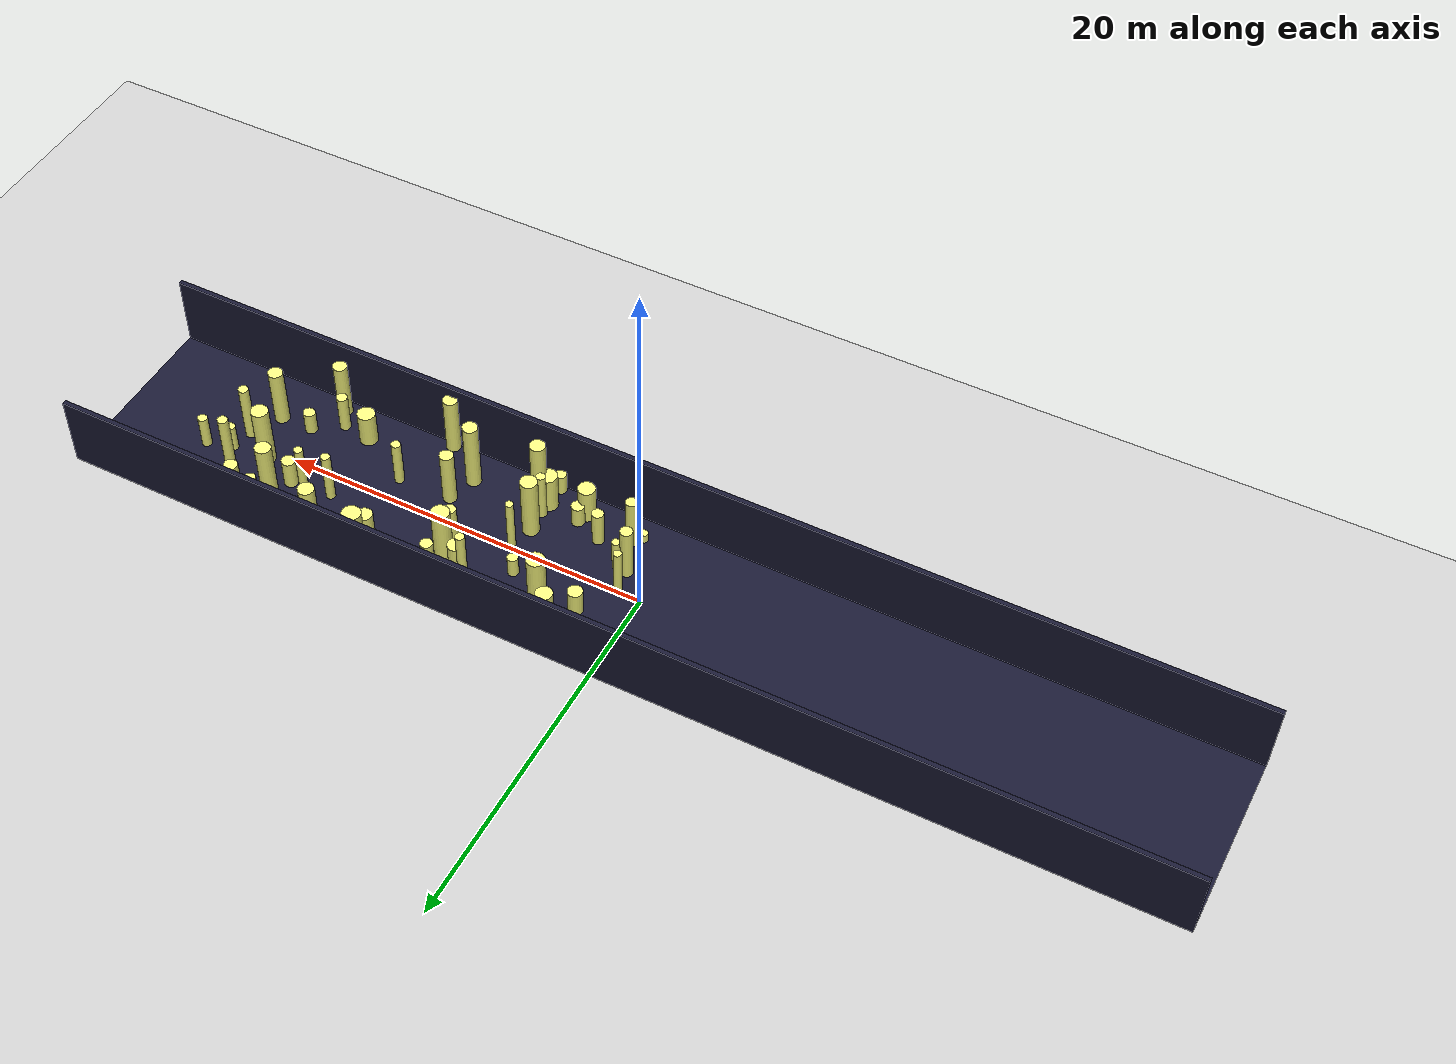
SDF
<sdf version="1.4">
 <world name="default">
  <include><uri>model://ground_plane</uri></include>
  <include><uri>model://sun</uri></include>
  <model name="forest">
   <static>true</static>
   <link name="cylinder0">
    <pose>17.474350058050383 -3.0349304535474007 0.9654857216544241 0 0 0</pose>
    <visual name="visual">
     <geometry>
      <cylinder><radius>0.479023355841757</radius><length>1.9309714433088483</length></cylinder>
     </geometry>
     <material>
      <ambient>0.6 0.6 0.6 1</ambient>
      <diffuse>1 1 0.5 1</diffuse>
      <specular>0 0 0</specular>
      <emissive>0 0 0 1</emissive>
     </material>
    </visual>
    <collision name="collision">
     <geometry>
      <cylinder><radius>0.479023355841757</radius><length>1.9309714433088483</length></cylinder>
     </geometry>
     <max_contacts>0</max_contacts>
    </collision>
   </link>
   <link name="cylinder1">
    <pose>4.981119732722934 -3.7257389631529083 1.0225231877695053 0 0 0</pose>
    <visual name="visual">
     <geometry>
      <cylinder><radius>0.4604490138018022</radius><length>2.0450463755390107</length></cylinder>
     </geometry>
     <material>
      <ambient>0.6 0.6 0.6 1</ambient>
      <diffuse>1 1 0.5 1</diffuse>
      <specular>0 0 0</specular>
      <emissive>0 0 0 1</emissive>
     </material>
    </visual>
    <collision name="collision">
     <geometry>
      <cylinder><radius>0.4604490138018022</radius><length>2.0450463755390107</length></cylinder>
     </geometry>
     <max_contacts>0</max_contacts>
    </collision>
   </link>
   <link name="cylinder4">
    <pose>22.26100889590525 -2.1995081622203716 1.6780744197933548 0 0 0</pose>
    <visual name="visual">
     <geometry>
      <cylinder><radius>0.3907151714520144</radius><length>3.3561488395867096</length></cylinder>
     </geometry>
     <material>
      <ambient>0.6 0.6 0.6 1</ambient>
      <diffuse>1 1 0.5 1</diffuse>
      <specular>0 0 0</specular>
      <emissive>0 0 0 1</emissive>
     </material>
    </visual>
    <collision name="collision">
     <geometry>
      <cylinder><radius>0.3907151714520144</radius><length>3.3561488395867096</length></cylinder>
     </geometry>
     <max_contacts>0</max_contacts>
    </collision>
   </link>
   <link name="cylinder5">
    <pose>13.33595052830114 -4.642942753143084 1.7284169206716375 0 0 0</pose>
    <visual name="visual">
     <geometry>
      <cylinder><radius>0.3890159434390348</radius><length>3.456833841343275</length></cylinder>
     </geometry>
     <material>
      <ambient>0.6 0.6 0.6 1</ambient>
      <diffuse>1 1 0.5 1</diffuse>
      <specular>0 0 0</specular>
      <emissive>0 0 0 1</emissive>
     </material>
    </visual>
    <collision name="collision">
     <geometry>
      <cylinder><radius>0.3890159434390348</radius><length>3.456833841343275</length></cylinder>
     </geometry>
     <max_contacts>0</max_contacts>
    </collision>
   </link>
   <link name="cylinder6">
    <pose>2.083699437350038 -1.4215035044701274 0.9485511643365495 0 0 0</pose>
    <visual name="visual">
     <geometry>
      <cylinder><radius>0.21684499694005663</radius><length>1.897102328673099</length></cylinder>
     </geometry>
     <material>
      <ambient>0.6 0.6 0.6 1</ambient>
      <diffuse>1 1 0.5 1</diffuse>
      <specular>0 0 0</specular>
      <emissive>0 0 0 1</emissive>
     </material>
    </visual>
    <collision name="collision">
     <geometry>
      <cylinder><radius>0.21684499694005663</radius><length>1.897102328673099</length></cylinder>
     </geometry>
     <max_contacts>0</max_contacts>
    </collision>
   </link>
   <link name="cylinder7">
    <pose>9.601256511389927 2.424961302580276 1.960368952381102 0 0 0</pose>
    <visual name="visual">
     <geometry>
      <cylinder><radius>0.4792568903990782</radius><length>3.920737904762204</length></cylinder>
     </geometry>
     <material>
      <ambient>0.6 0.6 0.6 1</ambient>
      <diffuse>1 1 0.5 1</diffuse>
      <specular>0 0 0</specular>
      <emissive>0 0 0 1</emissive>
     </material>
    </visual>
    <collision name="collision">
     <geometry>
      <cylinder><radius>0.4792568903990782</radius><length>3.920737904762204</length></cylinder>
     </geometry>
     <max_contacts>0</max_contacts>
    </collision>
   </link>
   <link name="cylinder8">
    <pose>9.742094447221689 3.6039482852947167 1.38029477843272 0 0 0</pose>
    <visual name="visual">
     <geometry>
      <cylinder><radius>0.32385085328464713</radius><length>2.76058955686544</length></cylinder>
     </geometry>
     <material>
      <ambient>0.6 0.6 0.6 1</ambient>
      <diffuse>1 1 0.5 1</diffuse>
      <specular>0 0 0</specular>
      <emissive>0 0 0 1</emissive>
     </material>
    </visual>
    <collision name="collision">
     <geometry>
      <cylinder><radius>0.32385085328464713</radius><length>2.76058955686544</length></cylinder>
     </geometry>
     <max_contacts>0</max_contacts>
    </collision>
   </link>
   <link name="cylinder10">
    <pose>6.990896955859142 -1.551141580334158 1.794815221802227 0 0 0</pose>
    <visual name="visual">
     <geometry>
      <cylinder><radius>0.44472197589610934</radius><length>3.589630443604454</length></cylinder>
     </geometry>
     <material>
      <ambient>0.6 0.6 0.6 1</ambient>
      <diffuse>1 1 0.5 1</diffuse>
      <specular>0 0 0</specular>
      <emissive>0 0 0 1</emissive>
     </material>
    </visual>
    <collision name="collision">
     <geometry>
      <cylinder><radius>0.44472197589610934</radius><length>3.589630443604454</length></cylinder>
     </geometry>
     <max_contacts>0</max_contacts>
    </collision>
   </link>
   <link name="cylinder15">
    <pose>13.340676952182172 3.4753915415929235 1.4218001322765699 0 0 0</pose>
    <visual name="visual">
     <geometry>
      <cylinder><radius>0.4169326418490212</radius><length>2.8436002645531397</length></cylinder>
     </geometry>
     <material>
      <ambient>0.6 0.6 0.6 1</ambient>
      <diffuse>1 1 0.5 1</diffuse>
      <specular>0 0 0</specular>
      <emissive>0 0 0 1</emissive>
     </material>
    </visual>
    <collision name="collision">
     <geometry>
      <cylinder><radius>0.4169326418490212</radius><length>2.8436002645531397</length></cylinder>
     </geometry>
     <max_contacts>0</max_contacts>
    </collision>
   </link>
   <link name="cylinder20">
    <pose>19.034700898979835 -3.231470783861803 1.0958777769155494 0 0 0</pose>
    <visual name="visual">
     <geometry>
      <cylinder><radius>0.2891964671625721</radius><length>2.191755553831099</length></cylinder>
     </geometry>
     <material>
      <ambient>0.6 0.6 0.6 1</ambient>
      <diffuse>1 1 0.5 1</diffuse>
      <specular>0 0 0</specular>
      <emissive>0 0 0 1</emissive>
     </material>
    </visual>
    <collision name="collision">
     <geometry>
      <cylinder><radius>0.2891964671625721</radius><length>2.191755553831099</length></cylinder>
     </geometry>
     <max_contacts>0</max_contacts>
    </collision>
   </link>
   <link name="cylinder21">
    <pose>19.74069789002226 2.639889300821311 1.7884892320661283 0 0 0</pose>
    <visual name="visual">
     <geometry>
      <cylinder><radius>0.4281758525312108</radius><length>3.5769784641322566</length></cylinder>
     </geometry>
     <material>
      <ambient>0.6 0.6 0.6 1</ambient>
      <diffuse>1 1 0.5 1</diffuse>
      <specular>0 0 0</specular>
      <emissive>0 0 0 1</emissive>
     </material>
    </visual>
    <collision name="collision">
     <geometry>
      <cylinder><radius>0.4281758525312108</radius><length>3.5769784641322566</length></cylinder>
     </geometry>
     <max_contacts>0</max_contacts>
    </collision>
   </link>
   <link name="cylinder22">
    <pose>10.028819131293751 0.9667783642480341 1.242532234555234 0 0 0</pose>
    <visual name="visual">
     <geometry>
      <cylinder><radius>0.3125013418587146</radius><length>2.485064469110468</length></cylinder>
     </geometry>
     <material>
      <ambient>0.6 0.6 0.6 1</ambient>
      <diffuse>1 1 0.5 1</diffuse>
      <specular>0 0 0</specular>
      <emissive>0 0 0 1</emissive>
     </material>
    </visual>
    <collision name="collision">
     <geometry>
      <cylinder><radius>0.3125013418587146</radius><length>2.485064469110468</length></cylinder>
     </geometry>
     <max_contacts>0</max_contacts>
    </collision>
   </link>
   <link name="cylinder24">
    <pose>21.432369416347754 3.2905600152771974 1.0591906268662163 0 0 0</pose>
    <visual name="visual">
     <geometry>
      <cylinder><radius>0.36264364448251285</radius><length>2.1183812537324327</length></cylinder>
     </geometry>
     <material>
      <ambient>0.6 0.6 0.6 1</ambient>
      <diffuse>1 1 0.5 1</diffuse>
      <specular>0 0 0</specular>
      <emissive>0 0 0 1</emissive>
     </material>
    </visual>
    <collision name="collision">
     <geometry>
      <cylinder><radius>0.36264364448251285</radius><length>2.1183812537324327</length></cylinder>
     </geometry>
     <max_contacts>0</max_contacts>
    </collision>
   </link>
   <link name="cylinder27">
    <pose>5.173194019723276 -3.116572948917123 0.6256688202765066 0 0 0</pose>
    <visual name="visual">
     <geometry>
      <cylinder><radius>0.34411350651951184</radius><length>1.2513376405530132</length></cylinder>
     </geometry>
     <material>
      <ambient>0.6 0.6 0.6 1</ambient>
      <diffuse>1 1 0.5 1</diffuse>
      <specular>0 0 0</specular>
      <emissive>0 0 0 1</emissive>
     </material>
    </visual>
    <collision name="collision">
     <geometry>
      <cylinder><radius>0.34411350651951184</radius><length>1.2513376405530132</length></cylinder>
     </geometry>
     <max_contacts>0</max_contacts>
    </collision>
   </link>
   <link name="cylinder30">
    <pose>16.150703960999316 4.161689183484395 1.9443778139249177 0 0 0</pose>
    <visual name="visual">
     <geometry>
      <cylinder><radius>0.4260707346098702</radius><length>3.8887556278498354</length></cylinder>
     </geometry>
     <material>
      <ambient>0.6 0.6 0.6 1</ambient>
      <diffuse>1 1 0.5 1</diffuse>
      <specular>0 0 0</specular>
      <emissive>0 0 0 1</emissive>
     </material>
    </visual>
    <collision name="collision">
     <geometry>
      <cylinder><radius>0.4260707346098702</radius><length>3.8887556278498354</length></cylinder>
     </geometry>
     <max_contacts>0</max_contacts>
    </collision>
   </link>
   <link name="cylinder31">
    <pose>20.468062265337892 -2.2148263954350336 0.6623111697631872 0 0 0</pose>
    <visual name="visual">
     <geometry>
      <cylinder><radius>0.3240726301415455</radius><length>1.3246223395263743</length></cylinder>
     </geometry>
     <material>
      <ambient>0.6 0.6 0.6 1</ambient>
      <diffuse>1 1 0.5 1</diffuse>
      <specular>0 0 0</specular>
      <emissive>0 0 0 1</emissive>
     </material>
    </visual>
    <collision name="collision">
     <geometry>
      <cylinder><radius>0.3240726301415455</radius><length>1.3246223395263743</length></cylinder>
     </geometry>
     <max_contacts>0</max_contacts>
    </collision>
   </link>
   <link name="cylinder32">
    <pose>1.680699917737826 -3.6193126956154478 0.29244209586093084 0 0 0</pose>
    <visual name="visual">
     <geometry>
      <cylinder><radius>0.2092950892574559</radius><length>0.5848841917218617</length></cylinder>
     </geometry>
     <material>
      <ambient>0.6 0.6 0.6 1</ambient>
      <diffuse>1 1 0.5 1</diffuse>
      <specular>0 0 0</specular>
      <emissive>0 0 0 1</emissive>
     </material>
    </visual>
    <collision name="collision">
     <geometry>
      <cylinder><radius>0.2092950892574559</radius><length>0.5848841917218617</length></cylinder>
     </geometry>
     <max_contacts>0</max_contacts>
    </collision>
   </link>
   <link name="cylinder33">
    <pose>9.863504967454482 0.808594310656428 0.3964918212273452 0 0 0</pose>
    <visual name="visual">
     <geometry>
      <cylinder><radius>0.2902772387612938</radius><length>0.7929836424546904</length></cylinder>
     </geometry>
     <material>
      <ambient>0.6 0.6 0.6 1</ambient>
      <diffuse>1 1 0.5 1</diffuse>
      <specular>0 0 0</specular>
      <emissive>0 0 0 1</emissive>
     </material>
    </visual>
    <collision name="collision">
     <geometry>
      <cylinder><radius>0.2902772387612938</radius><length>0.7929836424546904</length></cylinder>
     </geometry>
     <max_contacts>0</max_contacts>
    </collision>
   </link>
   <link name="cylinder36">
    <pose>7.3627164502554265 -0.2668266840622504 1.5181494502579536 0 0 0</pose>
    <visual name="visual">
     <geometry>
      <cylinder><radius>0.2097716151069922</radius><length>3.036298900515907</length></cylinder>
     </geometry>
     <material>
      <ambient>0.6 0.6 0.6 1</ambient>
      <diffuse>1 1 0.5 1</diffuse>
      <specular>0 0 0</specular>
      <emissive>0 0 0 1</emissive>
     </material>
    </visual>
    <collision name="collision">
     <geometry>
      <cylinder><radius>0.2097716151069922</radius><length>3.036298900515907</length></cylinder>
     </geometry>
     <max_contacts>0</max_contacts>
    </collision>
   </link>
   <link name="cylinder38">
    <pose>23.05829503605309 -0.4798861230173177 1.6580908223486408 0 0 0</pose>
    <visual name="visual">
     <geometry>
      <cylinder><radius>0.2744843459543446</radius><length>3.3161816446972816</length></cylinder>
     </geometry>
     <material>
      <ambient>0.6 0.6 0.6 1</ambient>
      <diffuse>1 1 0.5 1</diffuse>
      <specular>0 0 0</specular>
      <emissive>0 0 0 1</emissive>
     </material>
    </visual>
    <collision name="collision">
     <geometry>
      <cylinder><radius>0.2744843459543446</radius><length>3.3161816446972816</length></cylinder>
     </geometry>
     <max_contacts>0</max_contacts>
    </collision>
   </link>
   <link name="cylinder40">
    <pose>1.3012875947699953 -0.13856883436392842 1.3926023500930211 0 0 0</pose>
    <visual name="visual">
     <geometry>
      <cylinder><radius>0.2205407637531081</radius><length>2.7852047001860423</length></cylinder>
     </geometry>
     <material>
      <ambient>0.6 0.6 0.6 1</ambient>
      <diffuse>1 1 0.5 1</diffuse>
      <specular>0 0 0</specular>
      <emissive>0 0 0 1</emissive>
     </material>
    </visual>
    <collision name="collision">
     <geometry>
      <cylinder><radius>0.2205407637531081</radius><length>2.7852047001860423</length></cylinder>
     </geometry>
     <max_contacts>0</max_contacts>
    </collision>
   </link>
   <link name="cylinder41">
    <pose>7.368683766399791 -2.2983883685452575 0.9258939166206205 0 0 0</pose>
    <visual name="visual">
     <geometry>
      <cylinder><radius>0.34303641036955945</radius><length>1.851787833241241</length></cylinder>
     </geometry>
     <material>
      <ambient>0.6 0.6 0.6 1</ambient>
      <diffuse>1 1 0.5 1</diffuse>
      <specular>0 0 0</specular>
      <emissive>0 0 0 1</emissive>
     </material>
    </visual>
    <collision name="collision">
     <geometry>
      <cylinder><radius>0.34303641036955945</radius><length>1.851787833241241</length></cylinder>
     </geometry>
     <max_contacts>0</max_contacts>
    </collision>
   </link>
   <link name="cylinder46">
    <pose>11.668276562263593 -1.489181927137647 1.595949690401096 0 0 0</pose>
    <visual name="visual">
     <geometry>
      <cylinder><radius>0.36794035113910684</radius><length>3.191899380802192</length></cylinder>
     </geometry>
     <material>
      <ambient>0.6 0.6 0.6 1</ambient>
      <diffuse>1 1 0.5 1</diffuse>
      <specular>0 0 0</specular>
      <emissive>0 0 0 1</emissive>
     </material>
    </visual>
    <collision name="collision">
     <geometry>
      <cylinder><radius>0.36794035113910684</radius><length>3.191899380802192</length></cylinder>
     </geometry>
     <max_contacts>0</max_contacts>
    </collision>
   </link>
   <link name="cylinder47">
    <pose>11.20340025141465 -3.0679908835565084 1.9767067778364764 0 0 0</pose>
    <visual name="visual">
     <geometry>
      <cylinder><radius>0.3995136676813486</radius><length>3.953413555672953</length></cylinder>
     </geometry>
     <material>
      <ambient>0.6 0.6 0.6 1</ambient>
      <diffuse>1 1 0.5 1</diffuse>
      <specular>0 0 0</specular>
      <emissive>0 0 0 1</emissive>
     </material>
    </visual>
    <collision name="collision">
     <geometry>
      <cylinder><radius>0.3995136676813486</radius><length>3.953413555672953</length></cylinder>
     </geometry>
     <max_contacts>0</max_contacts>
    </collision>
   </link>
   <link name="cylinder48">
    <pose>1.6647512046453308 4.063980111714518 0.4371183833766389 0 0 0</pose>
    <visual name="visual">
     <geometry>
      <cylinder><radius>0.4283587279921878</radius><length>0.8742367667532778</length></cylinder>
     </geometry>
     <material>
      <ambient>0.6 0.6 0.6 1</ambient>
      <diffuse>1 1 0.5 1</diffuse>
      <specular>0 0 0</specular>
      <emissive>0 0 0 1</emissive>
     </material>
    </visual>
    <collision name="collision">
     <geometry>
      <cylinder><radius>0.4283587279921878</radius><length>0.8742367667532778</length></cylinder>
     </geometry>
     <max_contacts>0</max_contacts>
    </collision>
   </link>
   <link name="cylinder50">
    <pose>2.667249374632725 4.529174650250976 1.9906787980647265 0 0 0</pose>
    <visual name="visual">
     <geometry>
      <cylinder><radius>0.4340732099337412</radius><length>3.981357596129453</length></cylinder>
     </geometry>
     <material>
      <ambient>0.6 0.6 0.6 1</ambient>
      <diffuse>1 1 0.5 1</diffuse>
      <specular>0 0 0</specular>
      <emissive>0 0 0 1</emissive>
     </material>
    </visual>
    <collision name="collision">
     <geometry>
      <cylinder><radius>0.4340732099337412</radius><length>3.981357596129453</length></cylinder>
     </geometry>
     <max_contacts>0</max_contacts>
    </collision>
   </link>
   <link name="cylinder53">
    <pose>18.1401531018184 1.8894457020072286 1.7576686166153417 0 0 0</pose>
    <visual name="visual">
     <geometry>
      <cylinder><radius>0.22812469044872064</radius><length>3.5153372332306834</length></cylinder>
     </geometry>
     <material>
      <ambient>0.6 0.6 0.6 1</ambient>
      <diffuse>1 1 0.5 1</diffuse>
      <specular>0 0 0</specular>
      <emissive>0 0 0 1</emissive>
     </material>
    </visual>
    <collision name="collision">
     <geometry>
      <cylinder><radius>0.22812469044872064</radius><length>3.5153372332306834</length></cylinder>
     </geometry>
     <max_contacts>0</max_contacts>
    </collision>
   </link>
   <link name="cylinder54">
    <pose>14.572585931318628 -1.3522918783037055 1.3345853702635546 0 0 0</pose>
    <visual name="visual">
     <geometry>
      <cylinder><radius>0.25575965259684974</radius><length>2.6691707405271092</length></cylinder>
     </geometry>
     <material>
      <ambient>0.6 0.6 0.6 1</ambient>
      <diffuse>1 1 0.5 1</diffuse>
      <specular>0 0 0</specular>
      <emissive>0 0 0 1</emissive>
     </material>
    </visual>
    <collision name="collision">
     <geometry>
      <cylinder><radius>0.25575965259684974</radius><length>2.6691707405271092</length></cylinder>
     </geometry>
     <max_contacts>0</max_contacts>
    </collision>
   </link>
   <link name="cylinder55">
    <pose>3.698094316217322 -2.5134255271013553 1.0294614972973575 0 0 0</pose>
    <visual name="visual">
     <geometry>
      <cylinder><radius>0.3095883364873114</radius><length>2.058922994594715</length></cylinder>
     </geometry>
     <material>
      <ambient>0.6 0.6 0.6 1</ambient>
      <diffuse>1 1 0.5 1</diffuse>
      <specular>0 0 0</specular>
      <emissive>0 0 0 1</emissive>
     </material>
    </visual>
    <collision name="collision">
     <geometry>
      <cylinder><radius>0.3095883364873114</radius><length>2.058922994594715</length></cylinder>
     </geometry>
     <max_contacts>0</max_contacts>
    </collision>
   </link>
   <link name="cylinder59">
    <pose>7.926408092503692 3.374078958173211 1.9993845946720725 0 0 0</pose>
    <visual name="visual">
     <geometry>
      <cylinder><radius>0.2407179981084987</radius><length>3.998769189344145</length></cylinder>
     </geometry>
     <material>
      <ambient>0.6 0.6 0.6 1</ambient>
      <diffuse>1 1 0.5 1</diffuse>
      <specular>0 0 0</specular>
      <emissive>0 0 0 1</emissive>
     </material>
    </visual>
    <collision name="collision">
     <geometry>
      <cylinder><radius>0.2407179981084987</radius><length>3.998769189344145</length></cylinder>
     </geometry>
     <max_contacts>0</max_contacts>
    </collision>
   </link>
   <link name="cylinder63">
    <pose>24.688753817838474 1.1210332307911584 0.9537501482060452 0 0 0</pose>
    <visual name="visual">
     <geometry>
      <cylinder><radius>0.2576225765747192</radius><length>1.9075002964120904</length></cylinder>
     </geometry>
     <material>
      <ambient>0.6 0.6 0.6 1</ambient>
      <diffuse>1 1 0.5 1</diffuse>
      <specular>0 0 0</specular>
      <emissive>0 0 0 1</emissive>
     </material>
    </visual>
    <collision name="collision">
     <geometry>
      <cylinder><radius>0.2576225765747192</radius><length>1.9075002964120904</length></cylinder>
     </geometry>
     <max_contacts>0</max_contacts>
    </collision>
   </link>
   <link name="cylinder64">
    <pose>17.06424668885191 1.2110055904409283 1.4643404374544946 0 0 0</pose>
    <visual name="visual">
     <geometry>
      <cylinder><radius>0.24640808958183616</radius><length>2.928680874908989</length></cylinder>
     </geometry>
     <material>
      <ambient>0.6 0.6 0.6 1</ambient>
      <diffuse>1 1 0.5 1</diffuse>
      <specular>0 0 0</specular>
      <emissive>0 0 0 1</emissive>
     </material>
    </visual>
    <collision name="collision">
     <geometry>
      <cylinder><radius>0.24640808958183616</radius><length>2.928680874908989</length></cylinder>
     </geometry>
     <max_contacts>0</max_contacts>
    </collision>
   </link>
   <link name="cylinder68">
    <pose>23.323323432167506 0.7176590704898222 0.7920284478663597 0 0 0</pose>
    <visual name="visual">
     <geometry>
      <cylinder><radius>0.26099747706640636</radius><length>1.5840568957327195</length></cylinder>
     </geometry>
     <material>
      <ambient>0.6 0.6 0.6 1</ambient>
      <diffuse>1 1 0.5 1</diffuse>
      <specular>0 0 0</specular>
      <emissive>0 0 0 1</emissive>
     </material>
    </visual>
    <collision name="collision">
     <geometry>
      <cylinder><radius>0.26099747706640636</radius><length>1.5840568957327195</length></cylinder>
     </geometry>
     <max_contacts>0</max_contacts>
    </collision>
   </link>
   <link name="cylinder69">
    <pose>22.44977717178501 2.128671475122971 1.8876093849118023 0 0 0</pose>
    <visual name="visual">
     <geometry>
      <cylinder><radius>0.2750755018710056</radius><length>3.7752187698236046</length></cylinder>
     </geometry>
     <material>
      <ambient>0.6 0.6 0.6 1</ambient>
      <diffuse>1 1 0.5 1</diffuse>
      <specular>0 0 0</specular>
      <emissive>0 0 0 1</emissive>
     </material>
    </visual>
    <collision name="collision">
     <geometry>
      <cylinder><radius>0.2750755018710056</radius><length>3.7752187698236046</length></cylinder>
     </geometry>
     <max_contacts>0</max_contacts>
    </collision>
   </link>
   <link name="cylinder71">
    <pose>19.638999198153158 -4.185302012283316 1.6597904628092361 0 0 0</pose>
    <visual name="visual">
     <geometry>
      <cylinder><radius>0.37783208743530544</radius><length>3.3195809256184723</length></cylinder>
     </geometry>
     <material>
      <ambient>0.6 0.6 0.6 1</ambient>
      <diffuse>1 1 0.5 1</diffuse>
      <specular>0 0 0</specular>
      <emissive>0 0 0 1</emissive>
     </material>
    </visual>
    <collision name="collision">
     <geometry>
      <cylinder><radius>0.37783208743530544</radius><length>3.3195809256184723</length></cylinder>
     </geometry>
     <max_contacts>0</max_contacts>
    </collision>
   </link>
   <link name="cylinder74">
    <pose>2.509107483344568 1.928400536642676 0.7340046627735433 0 0 0</pose>
    <visual name="visual">
     <geometry>
      <cylinder><radius>0.3869482908814679</radius><length>1.4680093255470865</length></cylinder>
     </geometry>
     <material>
      <ambient>0.6 0.6 0.6 1</ambient>
      <diffuse>1 1 0.5 1</diffuse>
      <specular>0 0 0</specular>
      <emissive>0 0 0 1</emissive>
     </material>
    </visual>
    <collision name="collision">
     <geometry>
      <cylinder><radius>0.3869482908814679</radius><length>1.4680093255470865</length></cylinder>
     </geometry>
     <max_contacts>0</max_contacts>
    </collision>
   </link>
   <link name="cylinder77">
    <pose>19.33229031511035 1.3733495475842368 0.8252401866188253 0 0 0</pose>
    <visual name="visual">
     <geometry>
      <cylinder><radius>0.36996120135239224</radius><length>1.6504803732376505</length></cylinder>
     </geometry>
     <material>
      <ambient>0.6 0.6 0.6 1</ambient>
      <diffuse>1 1 0.5 1</diffuse>
      <specular>0 0 0</specular>
      <emissive>0 0 0 1</emissive>
     </material>
    </visual>
    <collision name="collision">
     <geometry>
      <cylinder><radius>0.36996120135239224</radius><length>1.6504803732376505</length></cylinder>
     </geometry>
     <max_contacts>0</max_contacts>
    </collision>
   </link>
   <link name="cylinder78">
    <pose>4.668917137390583 1.9124171253359474 1.3071265258688365 0 0 0</pose>
    <visual name="visual">
     <geometry>
      <cylinder><radius>0.48112252076557305</radius><length>2.614253051737673</length></cylinder>
     </geometry>
     <material>
      <ambient>0.6 0.6 0.6 1</ambient>
      <diffuse>1 1 0.5 1</diffuse>
      <specular>0 0 0</specular>
      <emissive>0 0 0 1</emissive>
     </material>
    </visual>
    <collision name="collision">
     <geometry>
      <cylinder><radius>0.48112252076557305</radius><length>2.614253051737673</length></cylinder>
     </geometry>
     <max_contacts>0</max_contacts>
    </collision>
   </link>
   <link name="cylinder80">
    <pose>2.170604650428352 -3.1974689258184763 1.5086333913672216 0 0 0</pose>
    <visual name="visual">
     <geometry>
      <cylinder><radius>0.31099082396441746</radius><length>3.0172667827344433</length></cylinder>
     </geometry>
     <material>
      <ambient>0.6 0.6 0.6 1</ambient>
      <diffuse>1 1 0.5 1</diffuse>
      <specular>0 0 0</specular>
      <emissive>0 0 0 1</emissive>
     </material>
    </visual>
    <collision name="collision">
     <geometry>
      <cylinder><radius>0.31099082396441746</radius><length>3.0172667827344433</length></cylinder>
     </geometry>
     <max_contacts>0</max_contacts>
    </collision>
   </link>
   <link name="cylinder82">
    <pose>6.37871469579348 1.2766453235188049 0.5902662712890283 0 0 0</pose>
    <visual name="visual">
     <geometry>
      <cylinder><radius>0.28617767153222506</radius><length>1.1805325425780566</length></cylinder>
     </geometry>
     <material>
      <ambient>0.6 0.6 0.6 1</ambient>
      <diffuse>1 1 0.5 1</diffuse>
      <specular>0 0 0</specular>
      <emissive>0 0 0 1</emissive>
     </material>
    </visual>
    <collision name="collision">
     <geometry>
      <cylinder><radius>0.28617767153222506</radius><length>1.1805325425780566</length></cylinder>
     </geometry>
     <max_contacts>0</max_contacts>
    </collision>
   </link>
   <link name="cylinder83">
    <pose>13.513190307854437 4.266943695894495 1.8112980608768263 0 0 0</pose>
    <visual name="visual">
     <geometry>
      <cylinder><radius>0.4925545396890163</radius><length>3.6225961217536526</length></cylinder>
     </geometry>
     <material>
      <ambient>0.6 0.6 0.6 1</ambient>
      <diffuse>1 1 0.5 1</diffuse>
      <specular>0 0 0</specular>
      <emissive>0 0 0 1</emissive>
     </material>
    </visual>
    <collision name="collision">
     <geometry>
      <cylinder><radius>0.4925545396890163</radius><length>3.6225961217536526</length></cylinder>
     </geometry>
     <max_contacts>0</max_contacts>
    </collision>
   </link>
   <link name="cylinder86">
    <pose>20.07317203050217 3.5767746129323488 1.0768072520890737 0 0 0</pose>
    <visual name="visual">
     <geometry>
      <cylinder><radius>0.2909790485498898</radius><length>2.1536145041781474</length></cylinder>
     </geometry>
     <material>
      <ambient>0.6 0.6 0.6 1</ambient>
      <diffuse>1 1 0.5 1</diffuse>
      <specular>0 0 0</specular>
      <emissive>0 0 0 1</emissive>
     </material>
    </visual>
    <collision name="collision">
     <geometry>
      <cylinder><radius>0.2909790485498898</radius><length>2.1536145041781474</length></cylinder>
     </geometry>
     <max_contacts>0</max_contacts>
    </collision>
   </link>
   <link name="cylinder87">
    <pose>7.6144950388647885 -3.536482370392333 1.9962532430703386 0 0 0</pose>
    <visual name="visual">
     <geometry>
      <cylinder><radius>0.4133327232874777</radius><length>3.992506486140677</length></cylinder>
     </geometry>
     <material>
      <ambient>0.6 0.6 0.6 1</ambient>
      <diffuse>1 1 0.5 1</diffuse>
      <specular>0 0 0</specular>
      <emissive>0 0 0 1</emissive>
     </material>
    </visual>
    <collision name="collision">
     <geometry>
      <cylinder><radius>0.4133327232874777</radius><length>3.992506486140677</length></cylinder>
     </geometry>
     <max_contacts>0</max_contacts>
    </collision>
   </link>
   <link name="cylinder90">
    <pose>21.36009563285767 0.5404909073676931 1.7462679064409035 0 0 0</pose>
    <visual name="visual">
     <geometry>
      <cylinder><radius>0.4559471430175502</radius><length>3.492535812881807</length></cylinder>
     </geometry>
     <material>
      <ambient>0.6 0.6 0.6 1</ambient>
      <diffuse>1 1 0.5 1</diffuse>
      <specular>0 0 0</specular>
      <emissive>0 0 0 1</emissive>
     </material>
    </visual>
    <collision name="collision">
     <geometry>
      <cylinder><radius>0.4559471430175502</radius><length>3.492535812881807</length></cylinder>
     </geometry>
     <max_contacts>0</max_contacts>
    </collision>
   </link>
   <link name="cylinder92">
    <pose>8.611060199222578 2.802950880863664 1.2318345666691446 0 0 0</pose>
    <visual name="visual">
     <geometry>
      <cylinder><radius>0.42564792998922757</radius><length>2.463669133338289</length></cylinder>
     </geometry>
     <material>
      <ambient>0.6 0.6 0.6 1</ambient>
      <diffuse>1 1 0.5 1</diffuse>
      <specular>0 0 0</specular>
      <emissive>0 0 0 1</emissive>
     </material>
    </visual>
    <collision name="collision">
     <geometry>
      <cylinder><radius>0.42564792998922757</radius><length>2.463669133338289</length></cylinder>
     </geometry>
     <max_contacts>0</max_contacts>
    </collision>
   </link>
   <link name="cylinder93">
    <pose>7.0414109159096085 -3.462413038750247 1.0891474010779854 0 0 0</pose>
    <visual name="visual">
     <geometry>
      <cylinder><radius>0.4923388169465407</radius><length>2.1782948021559707</length></cylinder>
     </geometry>
     <material>
      <ambient>0.6 0.6 0.6 1</ambient>
      <diffuse>1 1 0.5 1</diffuse>
      <specular>0 0 0</specular>
      <emissive>0 0 0 1</emissive>
     </material>
    </visual>
    <collision name="collision">
     <geometry>
      <cylinder><radius>0.4923388169465407</radius><length>2.1782948021559707</length></cylinder>
     </geometry>
     <max_contacts>0</max_contacts>
    </collision>
   </link>
   <link name="cylinder96">
    <pose>6.9627140028041765 -4.612476955491982 0.6083706528415949 0 0 0</pose>
    <visual name="visual">
     <geometry>
      <cylinder><radius>0.29461753248660627</radius><length>1.2167413056831897</length></cylinder>
     </geometry>
     <material>
      <ambient>0.6 0.6 0.6 1</ambient>
      <diffuse>1 1 0.5 1</diffuse>
      <specular>0 0 0</specular>
      <emissive>0 0 0 1</emissive>
     </material>
    </visual>
    <collision name="collision">
     <geometry>
      <cylinder><radius>0.29461753248660627</radius><length>1.2167413056831897</length></cylinder>
     </geometry>
     <max_contacts>0</max_contacts>
    </collision>
   </link>
   <link name="cylinder97">
    <pose>1.4578306670641012 -1.33429666659611 1.553172128074461 0 0 0</pose>
    <visual name="visual">
     <geometry>
      <cylinder><radius>0.3233350951365641</radius><length>3.106344256148922</length></cylinder>
     </geometry>
     <material>
      <ambient>0.6 0.6 0.6 1</ambient>
      <diffuse>1 1 0.5 1</diffuse>
      <specular>0 0 0</specular>
      <emissive>0 0 0 1</emissive>
     </material>
    </visual>
    <collision name="collision">
     <geometry>
      <cylinder><radius>0.3233350951365641</radius><length>3.106344256148922</length></cylinder>
     </geometry>
     <max_contacts>0</max_contacts>
    </collision>
   </link>
   <link name="cylinder98">
    <pose>7.023132510251131 -2.7348717658454333 1.4150410556112987 0 0 0</pose>
    <visual name="visual">
     <geometry>
      <cylinder><radius>0.24398562129820367</radius><length>2.8300821112225973</length></cylinder>
     </geometry>
     <material>
      <ambient>0.6 0.6 0.6 1</ambient>
      <diffuse>1 1 0.5 1</diffuse>
      <specular>0 0 0</specular>
      <emissive>0 0 0 1</emissive>
     </material>
    </visual>
    <collision name="collision">
     <geometry>
      <cylinder><radius>0.24398562129820367</radius><length>2.8300821112225973</length></cylinder>
     </geometry>
     <max_contacts>0</max_contacts>
    </collision>
   </link>
   <link name="cube0">
    <pose>0 5.0 2.0 0 0 0</pose>
    <visual name="visual">
     <geometry><box><size>60.0 0.25 4.0</size></box></geometry>
     <material>
      <ambient>0.1 0.1 0.1 1</ambient>
      <diffuse>0.1 0.1 0.2 1</diffuse>
      <specular>0 0 0</specular>
      <emissive>0 0 0 1</emissive>
     </material>
    </visual>
    <collision name="collision">
     <geometry><box><size>60.0 0.25 4.0</size></box></geometry>
     <max_contacts>0</max_contacts>
    </collision>
   </link>
   <link name="cube1">
    <pose>0 -5.0 2.0 0 0 0</pose>
    <visual name="visual">
     <geometry><box><size>60.0 0.25 4.0</size></box></geometry>
     <material>
      <ambient>0.1 0.1 0.1 1</ambient>
      <diffuse>0.1 0.1 0.2 1</diffuse>
      <specular>0 0 0</specular>
      <emissive>0 0 0 1</emissive>
     </material>
    </visual>
    <collision name="collision">
     <geometry><box><size>60.0 0.25 4.0</size></box></geometry>
     <max_contacts>0</max_contacts>
    </collision>
   </link>
   <link name="cube2">
    <pose>0 0 0.03125 0 0 0</pose>
    <visual name="visual">
     <geometry><box><size>60.0 10 0.0625</size></box></geometry>
     <material>
      <ambient>0.1 0.1 0.1 1</ambient>
      <diffuse>0.1 0.1 0.2 1</diffuse>
      <specular>0 0 0</specular>
      <emissive>0 0 0 1</emissive>
     </material>
    </visual>
    <collision name="collision">
     <geometry><box><size>60.0 10 0.0625</size></box></geometry>
     <max_contacts>0</max_contacts>
    </collision>
   </link>
  </model>
 </world>
</sdf>
